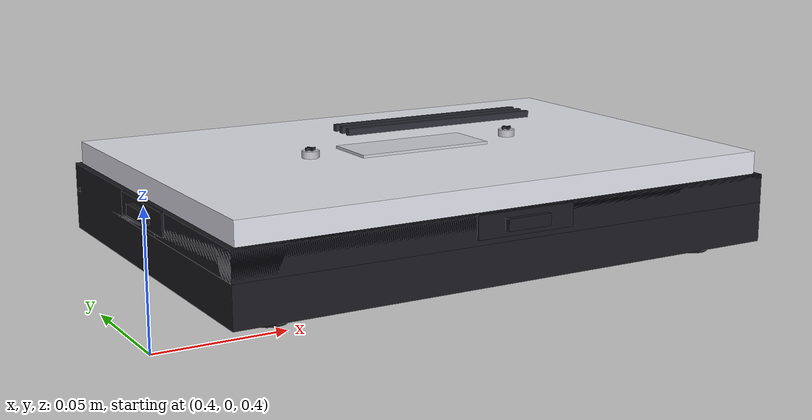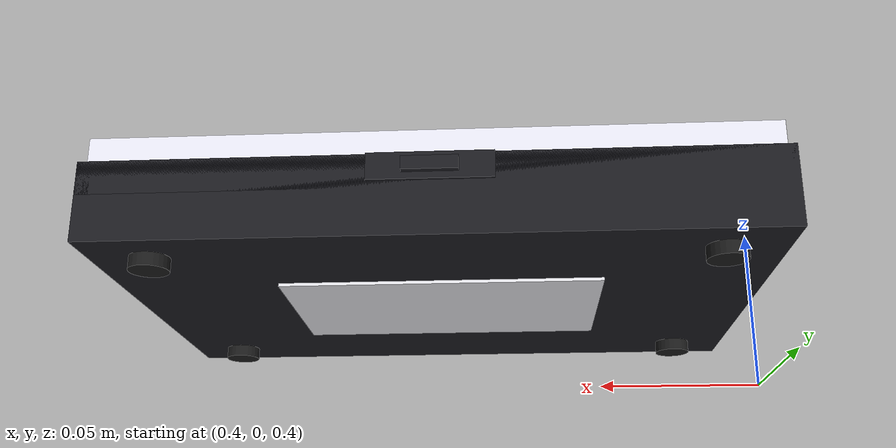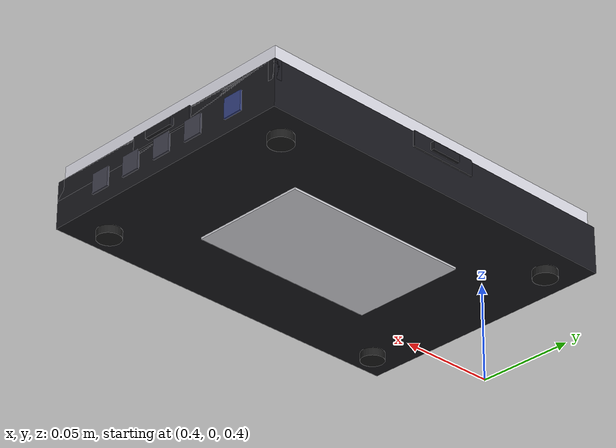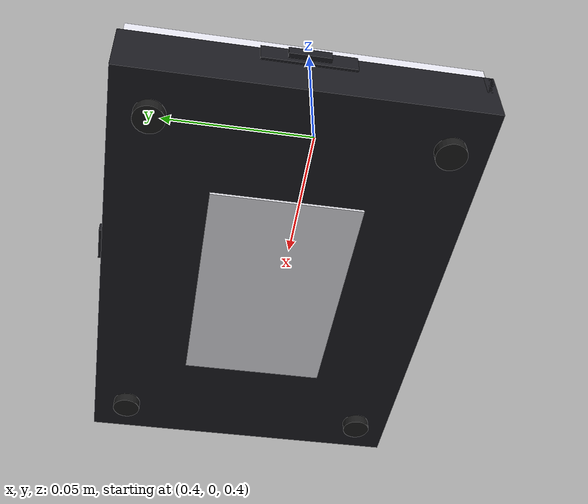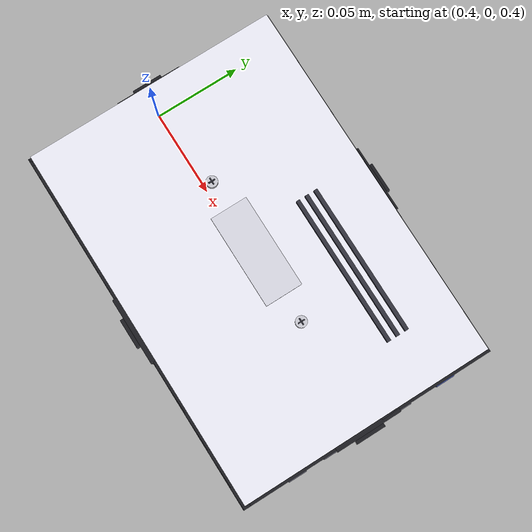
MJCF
<!-- Router device — visually detailed for demo/video renders
     Recognizable router shape from overhead with antenna connectors, snap clips, PCB internals. -->
<mujoco model="router_device">
  <compiler angle="radian"/>
  <option timestep="0.002"/>

  <default>
    <default class="device_body">
      <geom friction="0.8 0.005 0.001"/>
    </default>
    <default class="snap_clip">
      <geom friction="0.6 0.003 0.001"/>
      <joint stiffness="80" damping="8"/>
    </default>
    <default class="connector">
      <geom friction="1.2 0.01 0.001"/>
    </default>
    <default class="screw">
      <geom friction="0.3 0.001 0.0001"/>
      <joint damping="0.5"/>
    </default>
  </default>

  <asset>
    <texture name="rtr_pcb_tex" type="2d" builtin="checker" rgb1="0.02 0.28 0.04" rgb2="0.01 0.20 0.03" width="128" height="128"/>
    <material name="rtr_plastic" rgba="0.10 0.10 0.12 1" specular="0.5" shininess="0.7" reflectance="0.08"/>
    <material name="rtr_top" rgba="0.88 0.88 0.92 1" specular="0.4" shininess="0.6" reflectance="0.06"/>
    <material name="rtr_inner" rgba="0.18 0.18 0.22 1" specular="0.2"/>
    <material name="rtr_pcb" texture="rtr_pcb_tex" texrepeat="3 2" specular="0.15"/>
    <material name="rtr_screw" rgba="0.75 0.75 0.78 1" specular="0.9" shininess="0.95" reflectance="0.3"/>
    <material name="rtr_gold" rgba="0.85 0.70 0.15 1" specular="0.7" shininess="0.8"/>
    <material name="rtr_chip" rgba="0.08 0.08 0.10 1" specular="0.5" shininess="0.6"/>
    <material name="rtr_shield" rgba="0.65 0.65 0.68 1" specular="0.6" shininess="0.7" reflectance="0.15"/>
    <material name="rtr_rubber" rgba="0.10 0.10 0.10 1" specular="0.04"/>
    <material name="rtr_led_green" rgba="0.1 0.9 0.1 1" specular="0.5" shininess="0.9"/>
    <material name="rtr_led_off" rgba="0.15 0.15 0.15 1" specular="0.3"/>
    <material name="rtr_port" rgba="0.25 0.25 0.30 1" specular="0.4"/>
    <material name="rtr_label" rgba="0.86 0.86 0.88 1" specular="0.1"/>
    <material name="rtr_conn_bk" rgba="0.04 0.04 0.04 1" specular="0.15"/>
    <material name="rtr_trace" rgba="0.55 0.48 0.10 1" specular="0.3"/>
    <material name="rtr_cap" rgba="0.12 0.12 0.25 1" specular="0.3"/>
    <material name="rtr_cmos" rgba="0.72 0.72 0.72 1" specular="0.6"/>
    <material name="rtr_ant_base" rgba="0.06 0.06 0.06 1" specular="0.15"/>
  </asset>

  <worldbody>

    <body name="router_base" pos="0.5 0 0.44">

      <!-- ══ BOTTOM SHELL ══ -->
      <geom name="bottom_shell" type="box" size="0.10 0.07 0.012" material="rtr_plastic" mass="0.12"/>
      <!-- raised rim -->
      <geom name="rtr_rim_f" type="box" size="0.10 0.002 0.005" pos="0 -0.068 0.007" material="rtr_plastic" mass="0.01"/>
      <geom name="rtr_rim_b" type="box" size="0.10 0.002 0.005" pos="0 0.068 0.007" material="rtr_plastic" mass="0.01"/>
      <geom name="rtr_rim_l" type="box" size="0.002 0.07 0.005" pos="-0.098 0 0.007" material="rtr_plastic" mass="0.01"/>
      <geom name="rtr_rim_r" type="box" size="0.002 0.07 0.005" pos="0.098 0 0.007" material="rtr_plastic" mass="0.01"/>

      <!-- rubber feet -->
      <geom name="foot1" type="cylinder" size="0.006 0.002" pos="-0.082 -0.055 -0.014" material="rtr_rubber" mass="0.005"/>
      <geom name="foot2" type="cylinder" size="0.006 0.002" pos="0.082 -0.055 -0.014" material="rtr_rubber" mass="0.005"/>
      <geom name="foot3" type="cylinder" size="0.006 0.002" pos="-0.082 0.055 -0.014" material="rtr_rubber" mass="0.005"/>
      <geom name="foot4" type="cylinder" size="0.006 0.002" pos="0.082 0.055 -0.014" material="rtr_rubber" mass="0.005"/>

      <!-- back panel ports (ethernet 4×, power, WAN) -->
      <geom name="eth1" type="box" size="0.006 0.005 0.005" pos="0.095 -0.04 0.000" material="rtr_port" mass="0.003" contype="0" conaffinity="0"/>
      <geom name="eth2" type="box" size="0.006 0.005 0.005" pos="0.095 -0.02 0.000" material="rtr_port" mass="0.003" contype="0" conaffinity="0"/>
      <geom name="eth3" type="box" size="0.006 0.005 0.005" pos="0.095 0.00 0.000" material="rtr_port" mass="0.003" contype="0" conaffinity="0"/>
      <geom name="eth4" type="box" size="0.006 0.005 0.005" pos="0.095 0.02 0.000" material="rtr_port" mass="0.003" contype="0" conaffinity="0"/>
      <geom name="wan_port" type="box" size="0.006 0.005 0.005" pos="0.095 0.045 0.000" rgba="0.20 0.25 0.50 1" mass="0.003" contype="0" conaffinity="0"/>
      <geom name="pwr_jack" type="cylinder" size="0.004 0.005" pos="0.095 -0.058 0.000" rgba="0.15 0.15 0.15 1" mass="0.002" contype="0" conaffinity="0"/>

      <!-- LED strip on front -->
      <geom name="led1" type="box" size="0.002 0.002 0.001" pos="-0.04 -0.065 0.013" material="rtr_led_green" mass="0.0001" contype="0" conaffinity="0"/>
      <geom name="led2" type="box" size="0.002 0.002 0.001" pos="-0.02 -0.065 0.013" material="rtr_led_green" mass="0.0001" contype="0" conaffinity="0"/>
      <geom name="led3" type="box" size="0.002 0.002 0.001" pos="0.00 -0.065 0.013" material="rtr_led_off" mass="0.0001" contype="0" conaffinity="0"/>
      <geom name="led4" type="box" size="0.002 0.002 0.001" pos="0.02 -0.065 0.013" material="rtr_led_off" mass="0.0001" contype="0" conaffinity="0"/>

      <!-- bottom label sticker -->
      <geom name="rtr_label" type="box" size="0.05 0.03 0.0005" pos="0 0 -0.013" material="rtr_label" mass="0.002" contype="0" conaffinity="0"/>

      <!-- ══ TOP COVER (slides up when clips released + screws removed) ══ -->
      <body name="top_cover" pos="0 0 0.012">
        <joint name="cover_lift" type="slide" axis="0 0 1" range="0 0.08" stiffness="300" damping="30"/>

        <geom name="top_shell" type="box" size="0.098 0.068 0.008" material="rtr_top" mass="0.1"/>
        <!-- logo indent on top -->
        <geom name="logo_indent" type="box" size="0.025 0.010 0.0005" pos="0 0 0.0085" rgba="0.80 0.80 0.84 1" mass="0.001" contype="0" conaffinity="0"/>
        <!-- ventilation slots on top -->
        <geom name="rtr_vent1" type="box" size="0.04 0.001 0.0015" pos="0.03 0.04 0.009" material="rtr_inner" mass="0.0005" contype="0" conaffinity="0"/>
        <geom name="rtr_vent2" type="box" size="0.04 0.001 0.0015" pos="0.03 0.035 0.009" material="rtr_inner" mass="0.0005" contype="0" conaffinity="0"/>
        <geom name="rtr_vent3" type="box" size="0.04 0.001 0.0015" pos="0.03 0.030 0.009" material="rtr_inner" mass="0.0005" contype="0" conaffinity="0"/>

        <!-- SNAP CLIPS (4×) — slide outward to release -->
        <body name="clip_front" pos="0 -0.068 -0.004" childclass="snap_clip">
          <joint name="clip_front_j" type="slide" axis="0 -1 0" range="0 0.01"/>
          <geom name="clip_f_body" type="box" size="0.018 0.003 0.004" material="rtr_plastic" mass="0.002"/>
          <geom name="clip_f_tab" type="box" size="0.008 0.001 0.002" pos="0 -0.004 0" material="rtr_plastic" mass="0.001" contype="0" conaffinity="0"/>
          <site name="clip_front_site" type="sphere" size="0.004" rgba="0 0 0 0"/>
        </body>

        <body name="clip_back" pos="0 0.068 -0.004" childclass="snap_clip">
          <joint name="clip_back_j" type="slide" axis="0 1 0" range="0 0.01"/>
          <geom name="clip_b_body" type="box" size="0.018 0.003 0.004" material="rtr_plastic" mass="0.002"/>
          <geom name="clip_b_tab" type="box" size="0.008 0.001 0.002" pos="0 0.004 0" material="rtr_plastic" mass="0.001" contype="0" conaffinity="0"/>
          <site name="clip_back_site" type="sphere" size="0.004" rgba="0 0 0 0"/>
        </body>

        <body name="clip_left" pos="-0.098 0 -0.004" childclass="snap_clip">
          <joint name="clip_left_j" type="slide" axis="-1 0 0" range="0 0.01"/>
          <geom name="clip_l_body" type="box" size="0.003 0.018 0.004" material="rtr_plastic" mass="0.002"/>
          <geom name="clip_l_tab" type="box" size="0.001 0.008 0.002" pos="-0.004 0 0" material="rtr_plastic" mass="0.001" contype="0" conaffinity="0"/>
          <site name="clip_left_site" type="sphere" size="0.004" rgba="0 0 0 0"/>
        </body>

        <body name="clip_right" pos="0.098 0 -0.004" childclass="snap_clip">
          <joint name="clip_right_j" type="slide" axis="1 0 0" range="0 0.01"/>
          <geom name="clip_r_body" type="box" size="0.003 0.018 0.004" material="rtr_plastic" mass="0.002"/>
          <geom name="clip_r_tab" type="box" size="0.001 0.008 0.002" pos="0.004 0 0" material="rtr_plastic" mass="0.001" contype="0" conaffinity="0"/>
          <site name="clip_right_site" type="sphere" size="0.004" rgba="0 0 0 0"/>
        </body>

        <!-- HIDDEN SCREWS (2×) under label — phillips cross marks -->
        <body name="hidden_screw_1" pos="-0.04 0 0.009" childclass="screw">
          <joint name="hscrew_1_turn" type="hinge" axis="0 0 1" range="0 31.4159" stiffness="2.0" damping="0.3"/>
          <joint name="hscrew_1_slide" type="slide" axis="0 0 1" range="0 0.012" stiffness="80" damping="4"/>
          <geom name="hs1_head" type="cylinder" size="0.003 0.0015" material="rtr_screw" mass="0.001"/>
          <geom name="hs1_xa" type="box" size="0.0018 0.0003 0.0005" pos="0 0 0.002" material="rtr_inner" mass="0.00005" contype="0" conaffinity="0"/>
          <geom name="hs1_xb" type="box" size="0.0003 0.0018 0.0005" pos="0 0 0.002" material="rtr_inner" mass="0.00005" contype="0" conaffinity="0"/>
          <geom name="hs1_shaft" type="cylinder" size="0.001 0.004" pos="0 0 -0.003" material="rtr_screw" mass="0.0005"/>
          <site name="hscrew_1_site" type="sphere" size="0.003" rgba="0 0 0 0"/>
        </body>

        <body name="hidden_screw_2" pos="0.04 0 0.009" childclass="screw">
          <joint name="hscrew_2_turn" type="hinge" axis="0 0 1" range="0 31.4159" stiffness="2.0" damping="0.3"/>
          <joint name="hscrew_2_slide" type="slide" axis="0 0 1" range="0 0.012" stiffness="80" damping="4"/>
          <geom name="hs2_head" type="cylinder" size="0.003 0.0015" material="rtr_screw" mass="0.001"/>
          <geom name="hs2_xa" type="box" size="0.0018 0.0003 0.0005" pos="0 0 0.002" material="rtr_inner" mass="0.00005" contype="0" conaffinity="0"/>
          <geom name="hs2_xb" type="box" size="0.0003 0.0018 0.0005" pos="0 0 0.002" material="rtr_inner" mass="0.00005" contype="0" conaffinity="0"/>
          <geom name="hs2_shaft" type="cylinder" size="0.001 0.004" pos="0 0 -0.003" material="rtr_screw" mass="0.0005"/>
          <site name="hscrew_2_site" type="sphere" size="0.003" rgba="0 0 0 0"/>
        </body>
      </body>

      <!-- ══ PCB (revealed under top cover) ══ -->
      <body name="router_pcb" pos="0 0 0">
        <geom name="router_board" type="box" size="0.085 0.055 0.001" material="rtr_pcb" mass="0.08"/>
        <site name="router_pcb_center" type="sphere" size="0.003" rgba="0 0 0 0"/>

        <!-- processor + heatsink -->
        <geom name="processor_pad" type="box" size="0.013 0.013 0.001" pos="0 0 0.002" material="rtr_chip" mass="0.01" contype="0" conaffinity="0"/>
        <geom name="processor_hs" type="box" size="0.012 0.012 0.004" pos="0 0 0.005" material="rtr_shield" mass="0.02"/>

        <!-- secondary chip (WiFi) -->
        <geom name="wifi_chip" type="box" size="0.008 0.008 0.001" pos="0.04 0.02 0.002" material="rtr_chip" mass="0.005" contype="0" conaffinity="0"/>
        <geom name="wifi_shield" type="box" size="0.010 0.010 0.003" pos="0.04 0.02 0.004" material="rtr_shield" mass="0.008"/>

        <!-- flash memory -->
        <geom name="flash_chip" type="box" size="0.005 0.005 0.0008" pos="-0.04 -0.02 0.002" material="rtr_chip" mass="0.003" contype="0" conaffinity="0"/>

        <!-- RAM chip -->
        <geom name="rtr_ram" type="box" size="0.006 0.004 0.0008" pos="0.03 -0.03 0.002" material="rtr_chip" mass="0.003" contype="0" conaffinity="0"/>

        <!-- capacitors row -->
        <geom name="cap1" type="cylinder" size="0.002 0.003" pos="-0.06 0.03 0.004" material="rtr_cap" mass="0.001" contype="0" conaffinity="0"/>
        <geom name="cap2" type="cylinder" size="0.002 0.003" pos="-0.06 0.02 0.004" material="rtr_cap" mass="0.001" contype="0" conaffinity="0"/>
        <geom name="cap3" type="cylinder" size="0.0015 0.002" pos="-0.06 0.01 0.003" material="rtr_cap" mass="0.0005" contype="0" conaffinity="0"/>

        <!-- gold PCB traces -->
        <geom name="rtr_tr1" type="box" size="0.0003 0.035 0.0002" pos="0.015 0 0.001" material="rtr_trace" mass="0.0001" contype="0" conaffinity="0"/>
        <geom name="rtr_tr2" type="box" size="0.035 0.0003 0.0002" pos="0 -0.01 0.001" material="rtr_trace" mass="0.0001" contype="0" conaffinity="0"/>
        <geom name="rtr_tr3" type="box" size="0.0003 0.025 0.0002" pos="-0.03 0.01 0.001" material="rtr_trace" mass="0.0001" contype="0" conaffinity="0"/>
        <geom name="rtr_tr4" type="box" size="0.02 0.0003 0.0002" pos="0.02 0.02 0.001" material="rtr_trace" mass="0.0001" contype="0" conaffinity="0"/>

        <!-- SMD component rows -->
        <geom name="rtr_smd1" type="box" size="0.015 0.001 0.0005" pos="0.05 -0.04 0.001" rgba="0.06 0.06 0.06 1" mass="0.0005" contype="0" conaffinity="0"/>
        <geom name="rtr_smd2" type="box" size="0.010 0.001 0.0005" pos="-0.05 -0.04 0.001" rgba="0.06 0.06 0.06 1" mass="0.0005" contype="0" conaffinity="0"/>

        <!-- antenna connector 1 (SMA-style) -->
        <body name="antenna_conn_1" pos="-0.085 0.03 0.002">
          <joint name="ant_conn_1" type="hinge" axis="0 0 1" range="0 6.28" stiffness="1.0" damping="0.2"/>
          <geom name="ant1_base" type="cylinder" size="0.005 0.003" material="rtr_ant_base" mass="0.003"/>
          <geom name="ant1_pin" type="cylinder" size="0.001 0.006" pos="0 0 0.005" material="rtr_gold" mass="0.001"/>
          <geom name="ant1_ring" type="cylinder" size="0.004 0.001" pos="0 0 0.008" material="rtr_gold" mass="0.001" contype="0" conaffinity="0"/>
          <site name="ant_conn_1_site" type="sphere" size="0.005" rgba="0 0 0 0"/>
        </body>

        <!-- antenna connector 2 (SMA-style) -->
        <body name="antenna_conn_2" pos="-0.085 -0.03 0.002">
          <joint name="ant_conn_2" type="hinge" axis="0 0 1" range="0 6.28" stiffness="1.0" damping="0.2"/>
          <geom name="ant2_base" type="cylinder" size="0.005 0.003" material="rtr_ant_base" mass="0.003"/>
          <geom name="ant2_pin" type="cylinder" size="0.001 0.006" pos="0 0 0.005" material="rtr_gold" mass="0.001"/>
          <geom name="ant2_ring" type="cylinder" size="0.004 0.001" pos="0 0 0.008" material="rtr_gold" mass="0.001" contype="0" conaffinity="0"/>
          <site name="ant_conn_2_site" type="sphere" size="0.005" rgba="0 0 0 0"/>
        </body>
      </body>

      <!-- ══ CMOS BATTERY ══ -->
      <body name="cmos_battery" pos="0.05 0.03 0.002">
        <joint name="cmos_batt_conn" type="slide" axis="0 0 1" range="0 0.01" stiffness="50" damping="3"/>
        <geom name="coin_cell" type="cylinder" size="0.010 0.002" material="rtr_cmos" mass="0.003"/>
        <geom name="cmos_plus" type="box" size="0.004 0.001 0.0003" pos="0 0 0.0025" rgba="0.50 0.50 0.50 1" mass="0.0001" contype="0" conaffinity="0"/>
        <geom name="cmos_lbl" type="box" size="0.005 0.003 0.0003" pos="0 -0.003 0.0025" material="rtr_label" mass="0.0001" contype="0" conaffinity="0"/>
        <site name="cmos_battery_zone" type="cylinder" size="0.01 0.002" rgba="0 0 0 0"/>
        <site name="cmos_battery_site" type="sphere" size="0.004" rgba="0 0 0 0"/>
      </body>

      <!-- ══ EMI SHIELD (over ethernet section) ══ -->
      <body name="eth_shield" pos="0.070 0 0.003">
        <geom name="shield_top" type="box" size="0.015 0.035 0.001" material="rtr_shield" mass="0.008"/>
        <geom name="shield_wall_f" type="box" size="0.015 0.001 0.005" pos="0 -0.034 -0.004" material="rtr_shield" mass="0.002" contype="0" conaffinity="0"/>
        <geom name="shield_wall_b" type="box" size="0.015 0.001 0.005" pos="0 0.034 -0.004" material="rtr_shield" mass="0.002" contype="0" conaffinity="0"/>
        <geom name="shield_wall_l" type="box" size="0.001 0.035 0.005" pos="-0.014 0 -0.004" material="rtr_shield" mass="0.002" contype="0" conaffinity="0"/>
      </body>
    </body>
  </worldbody>
  <visual>
    <global offwidth="1024" offheight="1024"/>
  </visual>
</mujoco>
